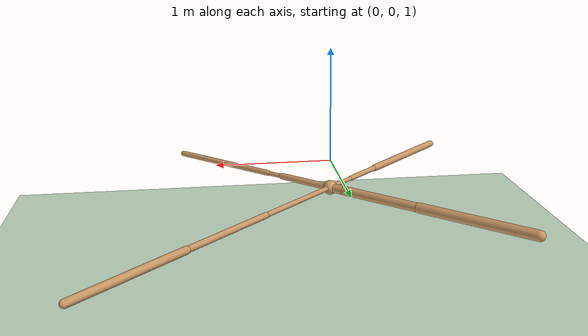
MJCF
<mujoco model="ant">
  <compiler angle="degree" coordinate="local" inertiafromgeom="true" />
  <option integrator="RK4" timestep="0.01" />
  <custom>
    <numeric data="0.0 0.0 0.55 1.0 0.0 0.0 0.0 0.0 1.0 0.0 -1.0 0.0 -1.0 0.0 1.0" name="init_qpos" />
  </custom>
  <default>
    <joint armature="1" damping="1" limited="true" />
    <geom conaffinity="0" condim="3" density="5.0" friction="1 0.5 0.5" margin="0.01" rgba="0.8 0.6 0.4 1" />
  </default>
  <asset>
    <texture builtin="gradient" height="100" rgb1="1 1 1" rgb2="0 0 0" type="skybox" width="100" />
    <texture builtin="flat" height="1278" mark="cross" markrgb="1 1 1" name="texgeom" random="0.01" rgb1="0.8 0.6 0.4" rgb2="0.8 0.6 0.4" type="cube" width="127" />
    <texture builtin="checker" height="100" name="texplane" rgb1="0 0 0" rgb2="0.8 0.8 0.8" type="2d" width="100" />
    <material name="MatPlane" reflectance="0.5" shininess="1" specular="1" texrepeat="60 60" texture="texplane" />
    <material name="geom" texture="texgeom" texuniform="true" />
  </asset>
  <worldbody>
    <light cutoff="100" diffuse="1 1 1" dir="-0 0 -1.3" directional="true" exponent="1" pos="0 0 1.3" specular=".1 .1 .1" />
    <geom conaffinity="1" condim="3" material="MatPlane" name="floor" pos="0 0 0" rgba="0.8 0.9 0.8 1" size="40 40 40" type="plane" />
    <body name="torso" pos="0 0 0.75">
      <camera name="track" mode="trackcom" pos="0 -11 5" xyaxes="1 0 0 0 0.5 1" />
      <geom name="torso_geom" pos="0 0 0" size="0.06534682214260101" type="sphere" />
      <joint armature="0" damping="0" limited="false" margin="0.01" name="root" pos="0 0 0" type="free" />
      <body name="front_left_leg" pos="0 0 0">
        <geom fromto="0 0 0 0.6317118406295776 0.6317118406295776 0" name="aux_1_geom" size="0.022250249981880188" type="capsule" />
        <body name="aux_1" pos="0.6317118406295776 0.6317118406295776 0">
          <joint axis="0 0 1" name="hip_1" pos="0.0 0.0 0.0" range="-30 30" type="hinge" />
          <geom fromto="0 0 0 0.634276807308197 0.634276807308197 0" name="left_leg_geom" size="0.026792792603373528" type="capsule" />
          <body name="left_leg_geom_aux" pos="0.634276807308197 0.634276807308197 0">
            <joint axis="-1 1 0" name="ankle_1" pos="0.0 0.0 0.0" range="30 70" type="hinge" />
            <geom fromto="0 0 0 0.756068229675293 0.756068229675293 0" name="left_ankle_geom" size="0.03285310044884682" type="capsule" />
          </body>
        </body>
      </body>
      <body name="front_right_leg" pos="0 0 0">
        <geom fromto="0 0 0 -0.10441414266824722 0.10441414266824722 0" name="aux_2_geom" size="0.040680091828107834" type="capsule" />
        <body name="aux_2" pos="-0.10441414266824722 0.10441414266824722 0">
          <joint axis="0 0 1" name="hip_2" pos="0.0 0.0 0.0" range="-30 30" type="hinge" />
          <geom fromto="0 0 0 -0.5379322171211243 0.5379322171211243 0" name="right_leg_geom" size="0.04110828787088394" type="capsule" />
          <body name="right_leg_geom_aux" pos="-0.5379322171211243 0.5379322171211243 0">
            <joint axis="1 1 0" name="ankle_2" pos="0.0 0.0 0.0" range="-70 -30" type="hinge" />
            <geom fromto="0 0 0 -0.7450658082962036 0.7450658082962036 0" name="right_ankle_geom" size="0.04539435729384422" type="capsule" />
          </body>
        </body>
      </body>
      <body name="back_leg" pos="0 0 0">
        <geom fromto="0 0 0 -0.23546385765075684 -0.23546385765075684 0" name="aux_3_geom" size="0.019206568598747253" type="capsule" />
        <body name="aux_3" pos="-0.23546385765075684 -0.23546385765075684 0">
          <joint axis="0 0 1" name="hip_3" pos="0.0 0.0 0.0" range="-30 30" type="hinge" />
          <geom fromto="0 0 0 -0.28911882638931274 -0.28911882638931274 0" name="back_leg_geom" size="0.024109281599521637" type="capsule" />
          <body name="back_leg_geom_aux" pos="-0.28911882638931274 -0.28911882638931274 0">
            <joint axis="-1 1 0" name="ankle_3" pos="0.0 0.0 0.0" range="-70 -30" type="hinge" />
            <geom fromto="0 0 0 -0.7676025032997131 -0.7676025032997131 0" name="third_ankle_geom" size="0.03297624737024307" type="capsule" />
          </body>
        </body>
      </body>
      <body name="right_back_leg" pos="0 0 0">
        <geom fromto="0 0 0 0.3879724144935608 -0.3879724144935608 0" name="aux_4_geom" size="0.029923196882009506" type="capsule" />
        <body name="aux_4" pos="0.3879724144935608 -0.3879724144935608 0">
          <joint axis="0 0 1" name="hip_4" pos="0.0 0.0 0.0" range="-30 30" type="hinge" />
          <geom fromto="0 0 0 0.1184212863445282 -0.1184212863445282 0" name="rightback_leg_geom" size="0.02051212266087532" type="capsule" />
          <body name="rightback_leg_geom_aux" pos="0.1184212863445282 -0.1184212863445282 0">
            <joint axis="1 1 0" name="ankle_4" pos="0.0 0.0 0.0" range="30 70" type="hinge" />
            <geom fromto="0 0 0 0.7926672697067261 -0.7926672697067261 0" name="fourth_ankle_geom" size="0.026692211627960205" type="capsule" />
          </body>
        </body>
      </body>
    </body>
  </worldbody>
  <actuator>
    <motor ctrllimited="true" ctrlrange="-1.0 1.0" joint="hip_4" gear="150" />
    <motor ctrllimited="true" ctrlrange="-1.0 1.0" joint="ankle_4" gear="150" />
    <motor ctrllimited="true" ctrlrange="-1.0 1.0" joint="hip_1" gear="150" />
    <motor ctrllimited="true" ctrlrange="-1.0 1.0" joint="ankle_1" gear="150" />
    <motor ctrllimited="true" ctrlrange="-1.0 1.0" joint="hip_2" gear="150" />
    <motor ctrllimited="true" ctrlrange="-1.0 1.0" joint="ankle_2" gear="150" />
    <motor ctrllimited="true" ctrlrange="-1.0 1.0" joint="hip_3" gear="150" />
    <motor ctrllimited="true" ctrlrange="-1.0 1.0" joint="ankle_3" gear="150" />
  </actuator>
</mujoco>
